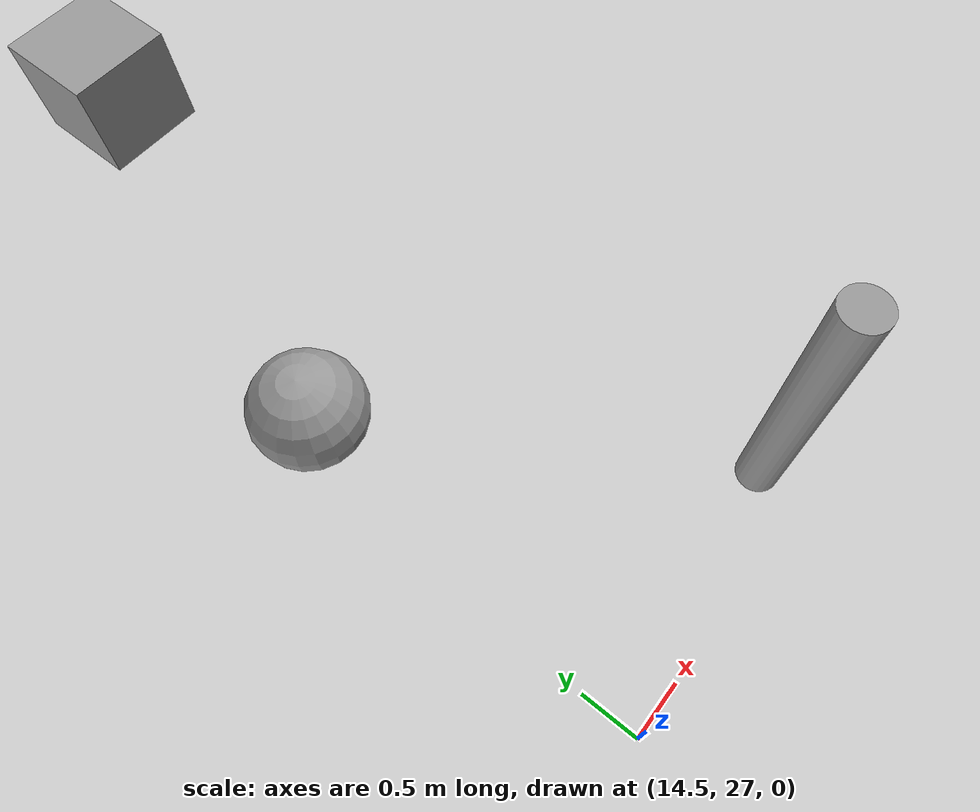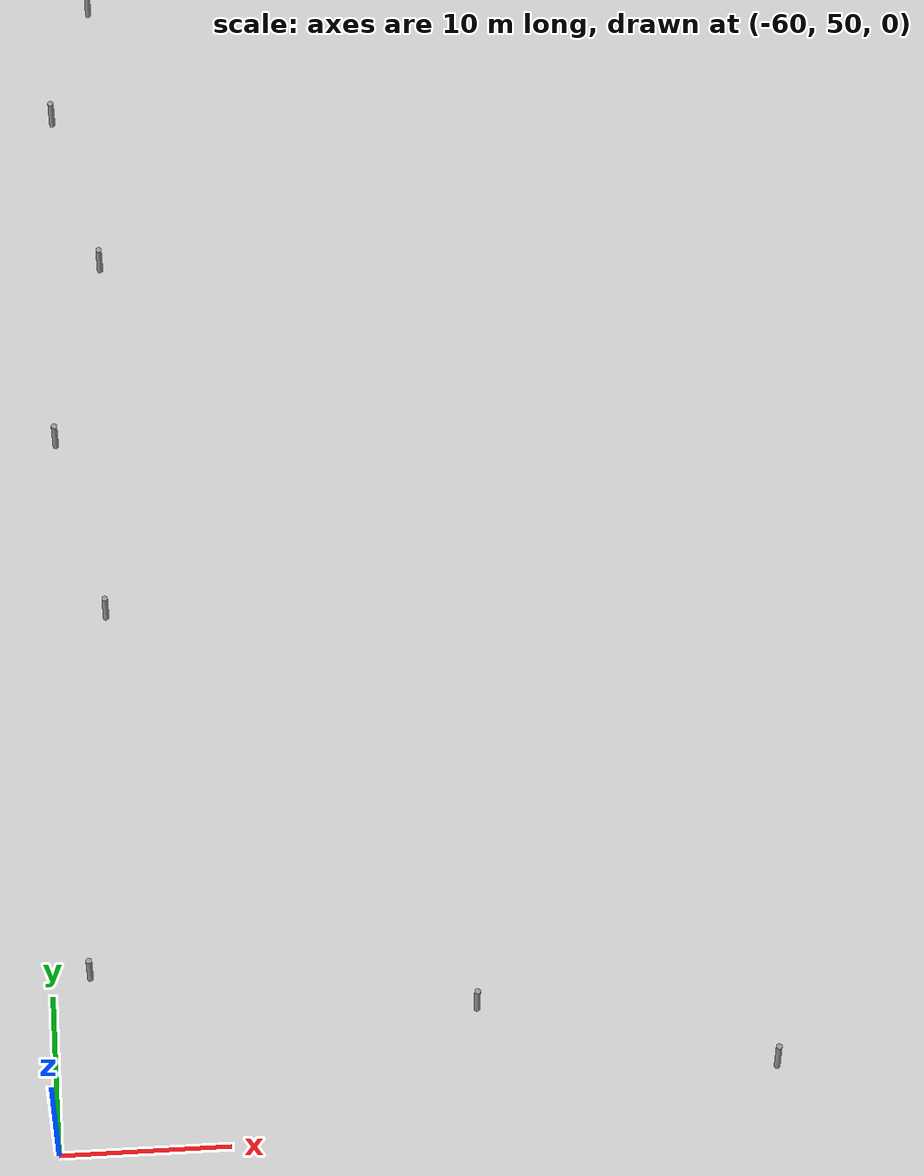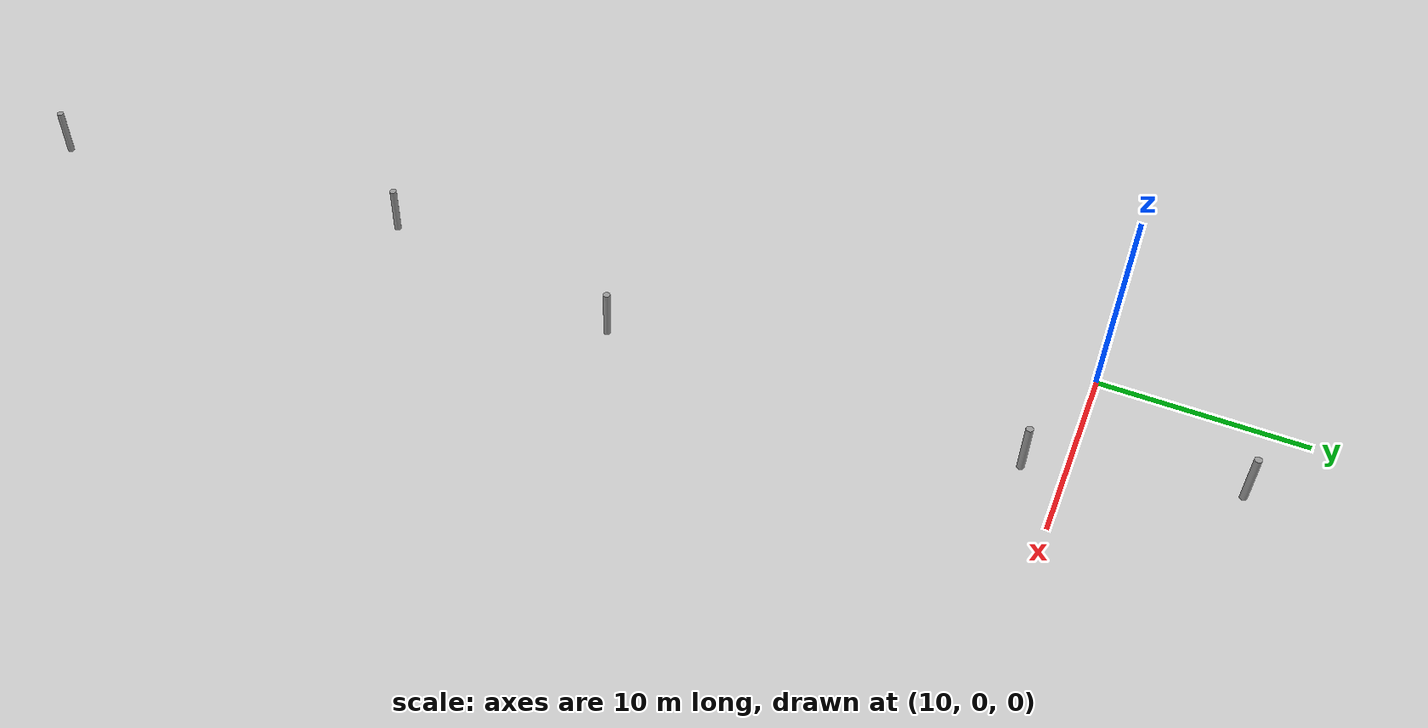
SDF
<sdf version="1.6">
 <world name="default">
  <light name="sun" type="directional">
   <pose>0 0 10 0 -0 0</pose>
   <diffuse>0.8 0.8 0.8 1</diffuse>
   <specular>0.2 0.2 0.2 1</specular>
   <attenuation>
    <range>1000</range>
    <constant>0.9</constant>
    <linear>0.01</linear>
    <quadratic>0.001</quadratic>
   </attenuation>
   <direction>-0.5 0.1 -0.9</direction>
   <spot><inner_angle>0</inner_angle><outer_angle>0</outer_angle><falloff>0</falloff></spot>
  </light>
  <model name="ground_plane">
   <static>1</static>
   <link name="link">
    <collision name="collision">
     <geometry><plane><normal>0 0 1</normal><size>100 100</size></plane></geometry>
     <surface><friction><ode><mu>100</mu><mu2>50</mu2></ode></friction></surface>
    </collision>
    <visual name="visual">
     <cast_shadows>0</cast_shadows>
     <geometry><plane><normal>0 0 1</normal><size>100 100</size></plane></geometry>
     <material>
      <script><uri>file://media/materials/scripts/gazebo.material</uri><name>Gazebo/Grey</name></script>
     </material>
    </visual>
   </link>
  </model>
  <gravity>0 0 -9.8</gravity>
  <magnetic_field>6e-06 2.3e-05 -4.2e-05</magnetic_field>
  <atmosphere type="adiabatic"/>
  <physics name="default_physics" default="0" type="ode">
   <max_step_size>0.001</max_step_size>
   <real_time_factor>1</real_time_factor>
   <real_time_update_rate>1000</real_time_update_rate>
  </physics>
  <scene><ambient>0.4 0.4 0.4 1</ambient><background>0.7 0.7 0.7 1</background><shadows>1</shadows></scene>
  <spherical_coordinates>
   <surface_model>EARTH_WGS84</surface_model>
   <latitude_deg>0</latitude_deg>
   <longitude_deg>0</longitude_deg>
   <elevation>0</elevation>
   <heading_deg>0</heading_deg>
  </spherical_coordinates>
  <model name="unit_cylinder_clone">
   <pose>16.3647 -57.7915 1.27775 2.1e-05 -1.3e-05 0.020259</pose>
   <link name="link">
    <inertial>
     <mass>1</mass>
     <inertia><ixx>0.145833</ixx><ixy>0</ixy><ixz>0</ixz><iyy>0.145833</iyy><iyz>0</iyz><izz>0.125</izz></inertia>
    </inertial>
    <collision name="collision">
     <geometry><cylinder><radius>0.179927</radius><length>2.5555</length></cylinder></geometry>
    </collision>
    <visual name="visual">
     <geometry><cylinder><radius>0.179927</radius><length>2.5555</length></cylinder></geometry>
     <material>
      <script><name>Gazebo/Grey</name><uri>file://media/materials/scripts/gazebo.material</uri></script>
     </material>
    </visual>
   </link>
  </model>
  <model name="unit_cylinder_clone_1">
   <pose>14.3861 -36.9854 1.27775 1e-06 -2e-05 -0.044689</pose>
   <link name="link">
    <inertial>
     <mass>1</mass>
     <inertia><ixx>0.145833</ixx><ixy>0</ixy><ixz>0</ixz><iyy>0.145833</iyy><iyz>0</iyz><izz>0.125</izz></inertia>
    </inertial>
    <collision name="collision">
     <geometry><cylinder><radius>0.179927</radius><length>2.5555</length></cylinder></geometry>
    </collision>
    <visual name="visual">
     <geometry><cylinder><radius>0.179927</radius><length>2.5555</length></cylinder></geometry>
     <material>
      <script><name>Gazebo/Grey</name><uri>file://media/materials/scripts/gazebo.material</uri></script>
     </material>
    </visual>
   </link>
  </model>
  <model name="unit_cylinder_clone_3">
   <pose>16.9156 -23.1098 1.27775 -3e-06 3.3e-05 -0.014706</pose>
   <link name="link">
    <inertial>
     <mass>1</mass>
     <inertia><ixx>0.145833</ixx><ixy>0</ixy><ixz>0</ixz><iyy>0.145833</iyy><iyz>0</iyz><izz>0.125</izz></inertia>
    </inertial>
    <collision name="collision">
     <geometry><cylinder><radius>0.179927</radius><length>2.5555</length></cylinder></geometry>
    </collision>
    <visual name="visual">
     <geometry><cylinder><radius>0.179927</radius><length>2.5555</length></cylinder></geometry>
     <material>
      <script><name>Gazebo/Grey</name><uri>file://media/materials/scripts/gazebo.material</uri></script>
     </material>
    </visual>
   </link>
  </model>
  <model name="unit_cylinder_clone_5">
   <pose>16.8846 -1.97157 1.27774 2.7e-05 -0 -0.006608</pose>
   <link name="link">
    <inertial>
     <mass>1</mass>
     <inertia><ixx>0.145833</ixx><ixy>0</ixy><ixz>0</ixz><iyy>0.145833</iyy><iyz>0</iyz><izz>0.125</izz></inertia>
    </inertial>
    <collision name="collision">
     <geometry><cylinder><radius>0.179927</radius><length>2.5555</length></cylinder></geometry>
    </collision>
    <visual name="visual">
     <geometry><cylinder><radius>0.179927</radius><length>2.5555</length></cylinder></geometry>
     <material>
      <script><name>Gazebo/Grey</name><uri>file://media/materials/scripts/gazebo.material</uri></script>
     </material>
    </visual>
   </link>
  </model>
  <model name="unit_cylinder_clone_6">
   <pose>14.4183 7.60875 1.27775 -1.1e-05 -4e-06 0.016956</pose>
   <link name="link">
    <inertial>
     <mass>1</mass>
     <inertia><ixx>0.145833</ixx><ixy>0</ixy><ixz>0</ixz><iyy>0.145833</iyy><iyz>0</iyz><izz>0.125</izz></inertia>
    </inertial>
    <collision name="collision">
     <geometry><cylinder><radius>0.179927</radius><length>2.5555</length></cylinder></geometry>
    </collision>
    <visual name="visual">
     <geometry><cylinder><radius>0.179927</radius><length>2.5555</length></cylinder></geometry>
     <material>
      <script><name>Gazebo/Grey</name><uri>file://media/materials/scripts/gazebo.material</uri></script>
     </material>
    </visual>
   </link>
  </model>
  <model name="unit_cylinder_clone_8">
   <pose>16.8343 27.4111 1.27775 2.8e-05 1.7e-05 0.013005</pose>
   <link name="link">
    <inertial>
     <mass>1</mass>
     <inertia><ixx>0.145833</ixx><ixy>0</ixy><ixz>0</ixz><iyy>0.145833</iyy><iyz>0</iyz><izz>0.125</izz></inertia>
    </inertial>
    <collision name="collision">
     <geometry><cylinder><radius>0.179927</radius><length>2.5555</length></cylinder></geometry>
    </collision>
    <visual name="visual">
     <geometry><cylinder><radius>0.179927</radius><length>2.5555</length></cylinder></geometry>
     <material>
      <script><name>Gazebo/Grey</name><uri>file://media/materials/scripts/gazebo.material</uri></script>
     </material>
    </visual>
   </link>
  </model>
  <model name="unit_sphere">
   <pose>14.8122 30.498 0.5 0 -0 0</pose>
   <link name="link">
    <inertial>
     <mass>1</mass>
     <inertia><ixx>0.1</ixx><ixy>0</ixy><ixz>0</ixz><iyy>0.1</iyy><iyz>0</iyz><izz>0.1</izz></inertia>
    </inertial>
    <collision name="collision"><geometry><sphere><radius>0.5</radius></sphere></geometry></collision>
    <visual name="visual">
     <geometry><sphere><radius>0.5</radius></sphere></geometry>
     <material>
      <script><name>Gazebo/Grey</name><uri>file://media/materials/scripts/gazebo.material</uri></script>
     </material>
    </visual>
   </link>
  </model>
  <model name="unit_box">
   <pose>16.1503 34.5797 0.499996 1e-06 -8e-06 0.000552</pose>
   <link name="link">
    <inertial>
     <mass>1</mass>
     <inertia>
      <ixx>0.166667</ixx>
      <ixy>0</ixy>
      <ixz>0</ixz>
      <iyy>0.166667</iyy>
      <iyz>0</iyz>
      <izz>0.166667</izz>
     </inertia>
    </inertial>
    <collision name="collision"><geometry><box><size>1 1 1</size></box></geometry></collision>
    <visual name="visual">
     <geometry><box><size>1 1 1</size></box></geometry>
     <material>
      <script><name>Gazebo/Grey</name><uri>file://media/materials/scripts/gazebo.material</uri></script>
     </material>
    </visual>
   </link>
  </model>
  <model name="unit_sphere_0">
   <pose>-2.57986 55.5983 0.499999 0 -0 0</pose>
   <link name="link">
    <inertial>
     <mass>1</mass>
     <inertia><ixx>0.1</ixx><ixy>0</ixy><ixz>0</ixz><iyy>0.1</iyy><iyz>0</iyz><izz>0.1</izz></inertia>
    </inertial>
    <collision name="collision"><geometry><sphere><radius>0.5</radius></sphere></geometry></collision>
    <visual name="visual">
     <geometry><sphere><radius>0.5</radius></sphere></geometry>
     <material>
      <script><name>Gazebo/Grey</name><uri>file://media/materials/scripts/gazebo.material</uri></script>
     </material>
    </visual>
   </link>
  </model>
  <model name="unit_cylinder_clone_21">
   <pose>-55.9928 84.7753 1.27775 -1.5e-05 2e-05 0.01446</pose>
   <link name="link">
    <inertial>
     <mass>1</mass>
     <inertia><ixx>0.145833</ixx><ixy>0</ixy><ixz>0</ixz><iyy>0.145833</iyy><iyz>0</iyz><izz>0.125</izz></inertia>
    </inertial>
    <collision name="collision">
     <geometry><cylinder><radius>0.179927</radius><length>2.5555</length></cylinder></geometry>
    </collision>
    <visual name="visual">
     <geometry><cylinder><radius>0.179927</radius><length>2.5555</length></cylinder></geometry>
     <material>
      <script><name>Gazebo/Grey</name><uri>file://media/materials/scripts/gazebo.material</uri></script>
     </material>
    </visual>
   </link>
  </model>
  <model name="unit_cylinder_clone_22">
   <pose>-58.6285 96.7269 1.27774 -6e-06 -2e-06 -0.045656</pose>
   <link name="link">
    <inertial>
     <mass>1</mass>
     <inertia><ixx>0.145833</ixx><ixy>0</ixy><ixz>0</ixz><iyy>0.145833</iyy><iyz>0</iyz><izz>0.125</izz></inertia>
    </inertial>
    <collision name="collision">
     <geometry><cylinder><radius>0.179927</radius><length>2.5555</length></cylinder></geometry>
    </collision>
    <visual name="visual">
     <geometry><cylinder><radius>0.179927</radius><length>2.5555</length></cylinder></geometry>
     <material>
      <script><name>Gazebo/Grey</name><uri>file://media/materials/scripts/gazebo.material</uri></script>
     </material>
    </visual>
   </link>
  </model>
  <model name="unit_cylinder_clone_24">
   <pose>-58.0642 119.673 1.27775 -1.2e-05 2e-06 0.013367</pose>
   <link name="link">
    <inertial>
     <mass>1</mass>
     <inertia><ixx>0.145833</ixx><ixy>0</ixy><ixz>0</ixz><iyy>0.145833</iyy><iyz>0</iyz><izz>0.125</izz></inertia>
    </inertial>
    <collision name="collision">
     <geometry><cylinder><radius>0.179927</radius><length>2.5555</length></cylinder></geometry>
    </collision>
    <visual name="visual">
     <geometry><cylinder><radius>0.179927</radius><length>2.5555</length></cylinder></geometry>
     <material>
      <script><name>Gazebo/Grey</name><uri>file://media/materials/scripts/gazebo.material</uri></script>
     </material>
    </visual>
   </link>
  </model>
  <model name="unit_cylinder_clone_27">
   <pose>-55.5154 127.658 1.27774 7e-06 -1e-06 -0.042655</pose>
   <link name="link">
    <inertial>
     <mass>1</mass>
     <inertia><ixx>0.145833</ixx><ixy>0</ixy><ixz>0</ixz><iyy>0.145833</iyy><iyz>0</iyz><izz>0.125</izz></inertia>
    </inertial>
    <collision name="collision">
     <geometry><cylinder><radius>0.179927</radius><length>2.5555</length></cylinder></geometry>
    </collision>
    <visual name="visual">
     <geometry><cylinder><radius>0.179927</radius><length>2.5555</length></cylinder></geometry>
     <material>
      <script><name>Gazebo/Grey</name><uri>file://media/materials/scripts/gazebo.material</uri></script>
     </material>
    </visual>
   </link>
  </model>
  <model name="unit_cylinder_clone_30">
   <pose>-58.5535 149.93 1.27775 -1.2e-05 1.6e-05 0.014792</pose>
   <link name="link">
    <inertial>
     <mass>1</mass>
     <inertia><ixx>0.145833</ixx><ixy>0</ixy><ixz>0</ixz><iyy>0.145833</iyy><iyz>0</iyz><izz>0.125</izz></inertia>
    </inertial>
    <collision name="collision">
     <geometry><cylinder><radius>0.179927</radius><length>2.5555</length></cylinder></geometry>
    </collision>
    <visual name="visual">
     <geometry><cylinder><radius>0.179927</radius><length>2.5555</length></cylinder></geometry>
     <material>
      <script><name>Gazebo/Grey</name><uri>file://media/materials/scripts/gazebo.material</uri></script>
     </material>
    </visual>
   </link>
  </model>
  <audio><device>default</device></audio>
  <model name="unit_cylinder_clone_9_clone">
   <pose>14.1326 39.5804 1.27774 -2.3e-05 5e-06 -0.032904</pose>
   <link name="link">
    <inertial>
     <mass>1</mass>
     <inertia><ixx>0.145833</ixx><ixy>0</ixy><ixz>0</ixz><iyy>0.145833</iyy><iyz>0</iyz><izz>0.125</izz></inertia>
    </inertial>
    <collision name="collision">
     <geometry><cylinder><radius>0.179927</radius><length>2.5555</length></cylinder></geometry>
    </collision>
    <visual name="visual">
     <geometry><cylinder><radius>0.179927</radius><length>2.5555</length></cylinder></geometry>
     <material>
      <script><name>Gazebo/Grey</name><uri>file://media/materials/scripts/gazebo.material</uri></script>
     </material>
    </visual>
   </link>
  </model>
  <model name="unit_cylinder_clone_25_clone">
   <pose>-55.4636 108.963 1.27775 1.8e-05 1e-05 -0.017251</pose>
   <link name="link">
    <inertial>
     <mass>1</mass>
     <inertia><ixx>0.145833</ixx><ixy>0</ixy><ixz>0</ixz><iyy>0.145833</iyy><iyz>0</iyz><izz>0.125</izz></inertia>
    </inertial>
    <collision name="collision">
     <geometry><cylinder><radius>0.179927</radius><length>2.5555</length></cylinder></geometry>
    </collision>
    <visual name="visual">
     <geometry><cylinder><radius>0.179927</radius><length>2.5555</length></cylinder></geometry>
     <material>
      <script><name>Gazebo/Grey</name><uri>file://media/materials/scripts/gazebo.material</uri></script>
     </material>
    </visual>
   </link>
  </model>
  <model name="unit_cylinder_clone_18_clone">
   <pose>-35.2784 57.8325 1.27775 -2e-06 4.1e-05 0.018403</pose>
   <link name="link">
    <inertial>
     <mass>1</mass>
     <inertia><ixx>0.145833</ixx><ixy>0</ixy><ixz>0</ixz><iyy>0.145833</iyy><iyz>0</iyz><izz>0.125</izz></inertia>
    </inertial>
    <collision name="collision">
     <geometry><cylinder><radius>0.179927</radius><length>2.5555</length></cylinder></geometry>
    </collision>
    <visual name="visual">
     <geometry><cylinder><radius>0.179927</radius><length>2.5555</length></cylinder></geometry>
     <material>
      <script><name>Gazebo/Grey</name><uri>file://media/materials/scripts/gazebo.material</uri></script>
     </material>
    </visual>
   </link>
  </model>
  <model name="unit_cylinder_clone_19_clone">
   <pose>-57.8107 61.0771 1.27774 -2e-06 3e-06 0.029872</pose>
   <link name="link">
    <inertial>
     <mass>1</mass>
     <inertia><ixx>0.145833</ixx><ixy>0</ixy><ixz>0</ixz><iyy>0.145833</iyy><iyz>0</iyz><izz>0.125</izz></inertia>
    </inertial>
    <collision name="collision">
     <geometry><cylinder><radius>0.179927</radius><length>2.5555</length></cylinder></geometry>
    </collision>
    <visual name="visual">
     <geometry><cylinder><radius>0.179927</radius><length>2.5555</length></cylinder></geometry>
     <material>
      <script><name>Gazebo/Grey</name><uri>file://media/materials/scripts/gazebo.material</uri></script>
     </material>
    </visual>
   </link>
  </model>
  <model name="unit_cylinder_clone_29_clone">
   <pose>-58.1009 138.673 1.27775 0 0 -0.025694</pose>
   <link name="link">
    <inertial>
     <mass>1</mass>
     <inertia><ixx>0.145833</ixx><ixy>0</ixy><ixz>0</ixz><iyy>0.145833</iyy><iyz>0</iyz><izz>0.125</izz></inertia>
    </inertial>
    <collision name="collision">
     <geometry><cylinder><radius>0.179927</radius><length>2.5555</length></cylinder></geometry>
    </collision>
    <visual name="visual">
     <geometry><cylinder><radius>0.179927</radius><length>2.5555</length></cylinder></geometry>
     <material>
      <script><name>Gazebo/Grey</name><uri>file://media/materials/scripts/gazebo.material</uri></script>
     </material>
    </visual>
   </link>
  </model>
  <model name="unit_cylinder_clone_15_clone">
   <pose>-18.039 53.2697 1.28594 -0.056989 0.004273 0.006393</pose>
   <link name="link">
    <inertial>
     <mass>1</mass>
     <inertia><ixx>0.145833</ixx><ixy>0</ixy><ixz>0</ixz><iyy>0.145833</iyy><iyz>0</iyz><izz>0.125</izz></inertia>
    </inertial>
    <collision name="collision">
     <geometry><cylinder><radius>0.179927</radius><length>2.5555</length></cylinder></geometry>
    </collision>
    <visual name="visual">
     <geometry><cylinder><radius>0.179927</radius><length>2.5555</length></cylinder></geometry>
     <material>
      <script><name>Gazebo/Grey</name><uri>file://media/materials/scripts/gazebo.material</uri></script>
     </material>
    </visual>
   </link>
  </model>
 </world>
</sdf>
